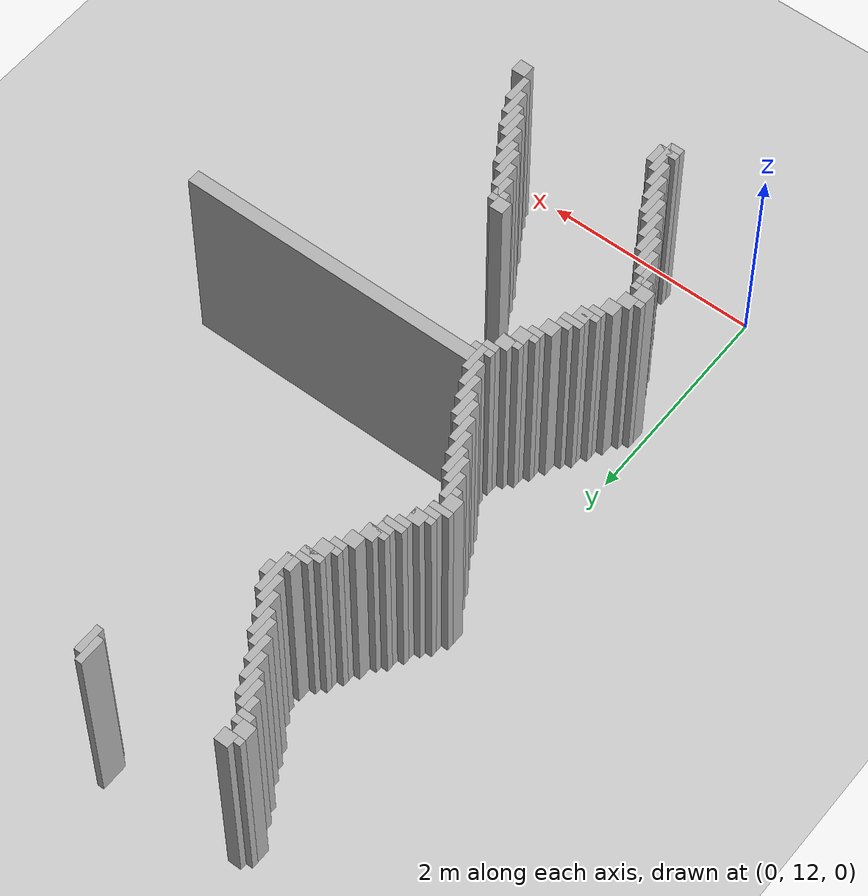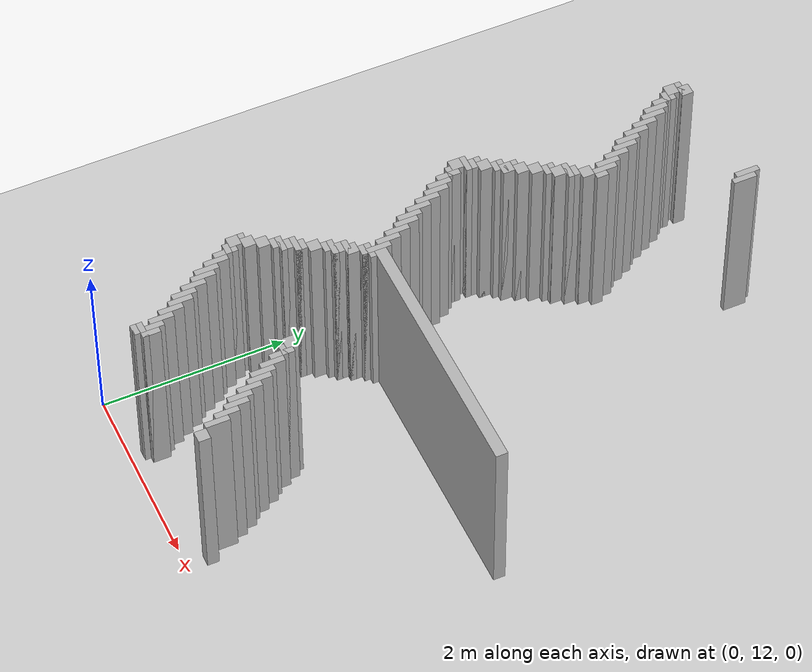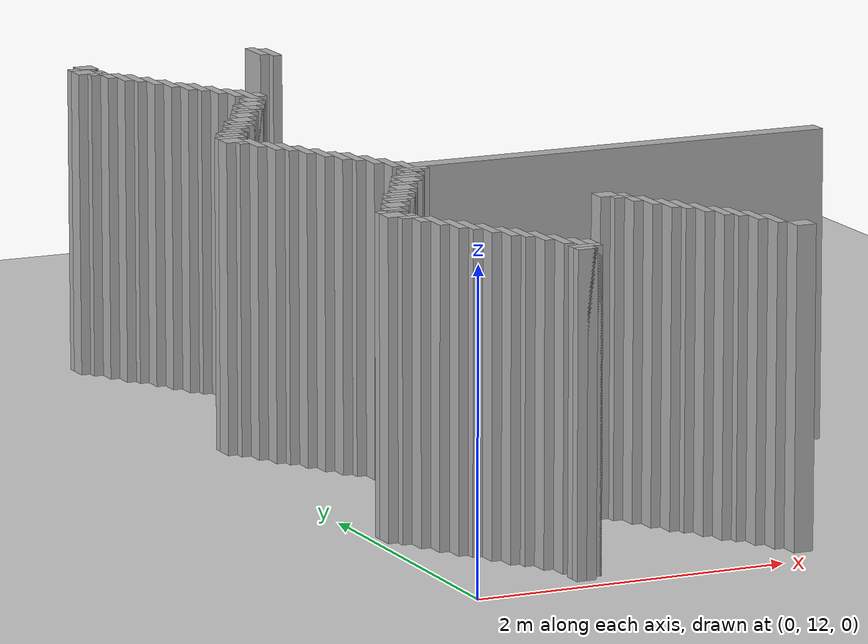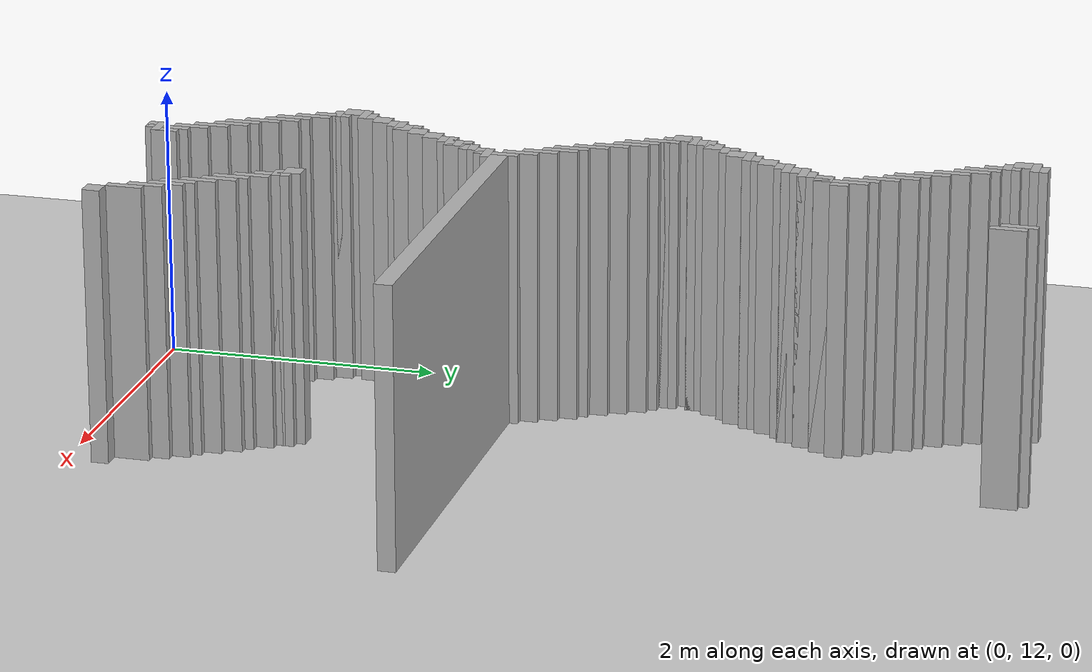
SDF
<sdf version="1.6">
 <world name="slam_world">
  <model name="ground_plane">
   <static>true</static>
   <link name="link">
    <collision name="collision">
     <geometry><plane><normal>0 0 1</normal><size>100 100</size></plane></geometry>
    </collision>
    <visual name="visual">
     <geometry><plane><normal>0 0 1</normal><size>100 100</size></plane></geometry>
     <material>
      <ambient>0.8 0.8 0.8 1</ambient>
      <diffuse>0.8 0.8 0.8 1</diffuse>
      <specular>0.8 0.8 0.8 1</specular>
     </material>
    </visual>
   </link>
  </model>
  <model name="wall_551">
   <static>true</static>
   <pose>1.4361702127659572 18.51063829787234 1.0 0 0 0</pose>
   <link name="link">
    <collision name="collision">
     <geometry><box><size>0.06382978723404255 0.2553191489361702 2.0</size></box></geometry>
    </collision>
    <visual name="visual">
     <geometry><box><size>0.06382978723404255 0.2553191489361702 2.0</size></box></geometry>
     <material><ambient>0.5 0.5 0.5 1</ambient><diffuse>0.7 0.7 0.7 1</diffuse></material>
    </visual>
   </link>
  </model>
  <model name="wall_561">
   <static>true</static>
   <pose>1.4999999999999998 18.446808510638295 1.0 0 0 0</pose>
   <link name="link">
    <collision name="collision">
     <geometry><box><size>0.06382978723404255 0.2553191489361702 2.0</size></box></geometry>
    </collision>
    <visual name="visual">
     <geometry><box><size>0.06382978723404255 0.2553191489361702 2.0</size></box></geometry>
     <material><ambient>0.5 0.5 0.5 1</ambient><diffuse>0.7 0.7 0.7 1</diffuse></material>
    </visual>
   </link>
  </model>
  <model name="wall_568">
   <static>true</static>
   <pose>0.19148936170212766 18.446808510638295 1.0 0 0 0</pose>
   <link name="link">
    <collision name="collision">
     <geometry><box><size>0.1276595744680851 0.1276595744680851 2.0</size></box></geometry>
    </collision>
    <visual name="visual">
     <geometry><box><size>0.1276595744680851 0.1276595744680851 2.0</size></box></geometry>
     <material><ambient>0.5 0.5 0.5 1</ambient><diffuse>0.7 0.7 0.7 1</diffuse></material>
    </visual>
   </link>
  </model>
  <model name="wall_574">
   <static>true</static>
   <pose>0.15957446808510636 18.414893617021274 1.0 0 0 0</pose>
   <link name="link">
    <collision name="collision">
     <geometry><box><size>0.19148936170212766 0.06382978723404255 2.0</size></box></geometry>
    </collision>
    <visual name="visual">
     <geometry><box><size>0.19148936170212766 0.06382978723404255 2.0</size></box></geometry>
     <material><ambient>0.5 0.5 0.5 1</ambient><diffuse>0.7 0.7 0.7 1</diffuse></material>
    </visual>
   </link>
  </model>
  <model name="wall_581">
   <static>true</static>
   <pose>0.1276595744680851 18.319148936170212 1.0 0 0 0</pose>
   <link name="link">
    <collision name="collision">
     <geometry><box><size>0.1276595744680851 0.1276595744680851 2.0</size></box></geometry>
    </collision>
    <visual name="visual">
     <geometry><box><size>0.1276595744680851 0.1276595744680851 2.0</size></box></geometry>
     <material><ambient>0.5 0.5 0.5 1</ambient><diffuse>0.7 0.7 0.7 1</diffuse></material>
    </visual>
   </link>
  </model>
  <model name="wall_586">
   <static>true</static>
   <pose>0.22340425531914893 18.191489361702125 1.0 0 0 0</pose>
   <link name="link">
    <collision name="collision">
     <geometry><box><size>0.06382978723404255 0.2553191489361702 2.0</size></box></geometry>
    </collision>
    <visual name="visual">
     <geometry><box><size>0.06382978723404255 0.2553191489361702 2.0</size></box></geometry>
     <material><ambient>0.5 0.5 0.5 1</ambient><diffuse>0.7 0.7 0.7 1</diffuse></material>
    </visual>
   </link>
  </model>
  <model name="wall_594">
   <static>true</static>
   <pose>0.19148936170212766 18.223404255319146 1.0 0 0 0</pose>
   <link name="link">
    <collision name="collision">
     <geometry><box><size>0.1276595744680851 0.06382978723404255 2.0</size></box></geometry>
    </collision>
    <visual name="visual">
     <geometry><box><size>0.1276595744680851 0.06382978723404255 2.0</size></box></geometry>
     <material><ambient>0.5 0.5 0.5 1</ambient><diffuse>0.7 0.7 0.7 1</diffuse></material>
    </visual>
   </link>
  </model>
  <model name="wall_600">
   <static>true</static>
   <pose>0.28723404255319146 18.06382978723404 1.0 0 0 0</pose>
   <link name="link">
    <collision name="collision">
     <geometry><box><size>0.06382978723404255 0.2553191489361702 2.0</size></box></geometry>
    </collision>
    <visual name="visual">
     <geometry><box><size>0.06382978723404255 0.2553191489361702 2.0</size></box></geometry>
     <material><ambient>0.5 0.5 0.5 1</ambient><diffuse>0.7 0.7 0.7 1</diffuse></material>
    </visual>
   </link>
  </model>
  <model name="wall_609">
   <static>true</static>
   <pose>0.351063829787234 18.0 1.0 0 0 0</pose>
   <link name="link">
    <collision name="collision">
     <geometry><box><size>0.06382978723404255 0.2553191489361702 2.0</size></box></geometry>
    </collision>
    <visual name="visual">
     <geometry><box><size>0.06382978723404255 0.2553191489361702 2.0</size></box></geometry>
     <material><ambient>0.5 0.5 0.5 1</ambient><diffuse>0.7 0.7 0.7 1</diffuse></material>
    </visual>
   </link>
  </model>
  <model name="wall_624">
   <static>true</static>
   <pose>0.4148936170212766 17.872340425531913 1.0 0 0 0</pose>
   <link name="link">
    <collision name="collision">
     <geometry><box><size>0.06382978723404255 0.2553191489361702 2.0</size></box></geometry>
    </collision>
    <visual name="visual">
     <geometry><box><size>0.06382978723404255 0.2553191489361702 2.0</size></box></geometry>
     <material><ambient>0.5 0.5 0.5 1</ambient><diffuse>0.7 0.7 0.7 1</diffuse></material>
    </visual>
   </link>
  </model>
  <model name="wall_637">
   <static>true</static>
   <pose>0.4787234042553191 17.74468085106383 1.0 0 0 0</pose>
   <link name="link">
    <collision name="collision">
     <geometry><box><size>0.06382978723404255 0.2553191489361702 2.0</size></box></geometry>
    </collision>
    <visual name="visual">
     <geometry><box><size>0.06382978723404255 0.2553191489361702 2.0</size></box></geometry>
     <material><ambient>0.5 0.5 0.5 1</ambient><diffuse>0.7 0.7 0.7 1</diffuse></material>
    </visual>
   </link>
  </model>
  <model name="wall_646">
   <static>true</static>
   <pose>0.5425531914893617 17.617021276595743 1.0 0 0 0</pose>
   <link name="link">
    <collision name="collision">
     <geometry><box><size>0.06382978723404255 0.2553191489361702 2.0</size></box></geometry>
    </collision>
    <visual name="visual">
     <geometry><box><size>0.06382978723404255 0.2553191489361702 2.0</size></box></geometry>
     <material><ambient>0.5 0.5 0.5 1</ambient><diffuse>0.7 0.7 0.7 1</diffuse></material>
    </visual>
   </link>
  </model>
  <model name="wall_655">
   <static>true</static>
   <pose>0.6063829787234042 17.5531914893617 1.0 0 0 0</pose>
   <link name="link">
    <collision name="collision">
     <geometry><box><size>0.06382978723404255 0.2553191489361702 2.0</size></box></geometry>
    </collision>
    <visual name="visual">
     <geometry><box><size>0.06382978723404255 0.2553191489361702 2.0</size></box></geometry>
     <material><ambient>0.5 0.5 0.5 1</ambient><diffuse>0.7 0.7 0.7 1</diffuse></material>
    </visual>
   </link>
  </model>
  <model name="wall_668">
   <static>true</static>
   <pose>0.6702127659574467 17.425531914893615 1.0 0 0 0</pose>
   <link name="link">
    <collision name="collision">
     <geometry><box><size>0.06382978723404255 0.2553191489361702 2.0</size></box></geometry>
    </collision>
    <visual name="visual">
     <geometry><box><size>0.06382978723404255 0.2553191489361702 2.0</size></box></geometry>
     <material><ambient>0.5 0.5 0.5 1</ambient><diffuse>0.7 0.7 0.7 1</diffuse></material>
    </visual>
   </link>
  </model>
  <model name="wall_681">
   <static>true</static>
   <pose>0.7340425531914893 17.29787234042553 1.0 0 0 0</pose>
   <link name="link">
    <collision name="collision">
     <geometry><box><size>0.06382978723404255 0.2553191489361702 2.0</size></box></geometry>
    </collision>
    <visual name="visual">
     <geometry><box><size>0.06382978723404255 0.2553191489361702 2.0</size></box></geometry>
     <material><ambient>0.5 0.5 0.5 1</ambient><diffuse>0.7 0.7 0.7 1</diffuse></material>
    </visual>
   </link>
  </model>
  <model name="wall_690">
   <static>true</static>
   <pose>0.7978723404255319 17.170212765957444 1.0 0 0 0</pose>
   <link name="link">
    <collision name="collision">
     <geometry><box><size>0.06382978723404255 0.3829787234042553 2.0</size></box></geometry>
    </collision>
    <visual name="visual">
     <geometry><box><size>0.06382978723404255 0.3829787234042553 2.0</size></box></geometry>
     <material><ambient>0.5 0.5 0.5 1</ambient><diffuse>0.7 0.7 0.7 1</diffuse></material>
    </visual>
   </link>
  </model>
  <model name="wall_701">
   <static>true</static>
   <pose>0.8617021276595744 17.170212765957444 1.0 0 0 0</pose>
   <link name="link">
    <collision name="collision">
     <geometry><box><size>0.06382978723404255 0.1276595744680851 2.0</size></box></geometry>
    </collision>
    <visual name="visual">
     <geometry><box><size>0.06382978723404255 0.1276595744680851 2.0</size></box></geometry>
     <material><ambient>0.5 0.5 0.5 1</ambient><diffuse>0.7 0.7 0.7 1</diffuse></material>
    </visual>
   </link>
  </model>
  <model name="wall_713">
   <static>true</static>
   <pose>0.7659574468085106 17.04255319148936 1.0 0 0 0</pose>
   <link name="link">
    <collision name="collision">
     <geometry><box><size>0.1276595744680851 0.1276595744680851 2.0</size></box></geometry>
    </collision>
    <visual name="visual">
     <geometry><box><size>0.1276595744680851 0.1276595744680851 2.0</size></box></geometry>
     <material><ambient>0.5 0.5 0.5 1</ambient><diffuse>0.7 0.7 0.7 1</diffuse></material>
    </visual>
   </link>
  </model>
  <model name="wall_724">
   <static>true</static>
   <pose>0.702127659574468 16.914893617021274 1.0 0 0 0</pose>
   <link name="link">
    <collision name="collision">
     <geometry><box><size>0.1276595744680851 0.1276595744680851 2.0</size></box></geometry>
    </collision>
    <visual name="visual">
     <geometry><box><size>0.1276595744680851 0.1276595744680851 2.0</size></box></geometry>
     <material><ambient>0.5 0.5 0.5 1</ambient><diffuse>0.7 0.7 0.7 1</diffuse></material>
    </visual>
   </link>
  </model>
  <model name="wall_734">
   <static>true</static>
   <pose>0.6702127659574467 16.882978723404253 1.0 0 0 0</pose>
   <link name="link">
    <collision name="collision">
     <geometry><box><size>0.19148936170212766 0.06382978723404255 2.0</size></box></geometry>
    </collision>
    <visual name="visual">
     <geometry><box><size>0.19148936170212766 0.06382978723404255 2.0</size></box></geometry>
     <material><ambient>0.5 0.5 0.5 1</ambient><diffuse>0.7 0.7 0.7 1</diffuse></material>
    </visual>
   </link>
  </model>
  <model name="wall_744">
   <static>true</static>
   <pose>0.6382978723404255 16.78723404255319 1.0 0 0 0</pose>
   <link name="link">
    <collision name="collision">
     <geometry><box><size>0.1276595744680851 0.1276595744680851 2.0</size></box></geometry>
    </collision>
    <visual name="visual">
     <geometry><box><size>0.1276595744680851 0.1276595744680851 2.0</size></box></geometry>
     <material><ambient>0.5 0.5 0.5 1</ambient><diffuse>0.7 0.7 0.7 1</diffuse></material>
    </visual>
   </link>
  </model>
  <model name="wall_754">
   <static>true</static>
   <pose>0.6063829787234042 16.75531914893617 1.0 0 0 0</pose>
   <link name="link">
    <collision name="collision">
     <geometry><box><size>0.19148936170212766 0.06382978723404255 2.0</size></box></geometry>
    </collision>
    <visual name="visual">
     <geometry><box><size>0.19148936170212766 0.06382978723404255 2.0</size></box></geometry>
     <material><ambient>0.5 0.5 0.5 1</ambient><diffuse>0.7 0.7 0.7 1</diffuse></material>
    </visual>
   </link>
  </model>
  <model name="wall_764">
   <static>true</static>
   <pose>0.5744680851063829 16.691489361702125 1.0 0 0 0</pose>
   <link name="link">
    <collision name="collision">
     <geometry><box><size>0.1276595744680851 0.06382978723404255 2.0</size></box></geometry>
    </collision>
    <visual name="visual">
     <geometry><box><size>0.1276595744680851 0.06382978723404255 2.0</size></box></geometry>
     <material><ambient>0.5 0.5 0.5 1</ambient><diffuse>0.7 0.7 0.7 1</diffuse></material>
    </visual>
   </link>
  </model>
  <model name="wall_771">
   <static>true</static>
   <pose>0.5106382978723404 16.595744680851062 1.0 0 0 0</pose>
   <link name="link">
    <collision name="collision">
     <geometry><box><size>0.1276595744680851 0.1276595744680851 2.0</size></box></geometry>
    </collision>
    <visual name="visual">
     <geometry><box><size>0.1276595744680851 0.1276595744680851 2.0</size></box></geometry>
     <material><ambient>0.5 0.5 0.5 1</ambient><diffuse>0.7 0.7 0.7 1</diffuse></material>
    </visual>
   </link>
  </model>
  <model name="wall_781">
   <static>true</static>
   <pose>0.44680851063829785 16.46808510638298 1.0 0 0 0</pose>
   <link name="link">
    <collision name="collision">
     <geometry><box><size>0.1276595744680851 0.1276595744680851 2.0</size></box></geometry>
    </collision>
    <visual name="visual">
     <geometry><box><size>0.1276595744680851 0.1276595744680851 2.0</size></box></geometry>
     <material><ambient>0.5 0.5 0.5 1</ambient><diffuse>0.7 0.7 0.7 1</diffuse></material>
    </visual>
   </link>
  </model>
  <model name="wall_791">
   <static>true</static>
   <pose>0.4148936170212766 16.436170212765955 1.0 0 0 0</pose>
   <link name="link">
    <collision name="collision">
     <geometry><box><size>0.19148936170212766 0.06382978723404255 2.0</size></box></geometry>
    </collision>
    <visual name="visual">
     <geometry><box><size>0.19148936170212766 0.06382978723404255 2.0</size></box></geometry>
     <material><ambient>0.5 0.5 0.5 1</ambient><diffuse>0.7 0.7 0.7 1</diffuse></material>
    </visual>
   </link>
  </model>
  <model name="wall_801">
   <static>true</static>
   <pose>0.3829787234042553 16.340425531914892 1.0 0 0 0</pose>
   <link name="link">
    <collision name="collision">
     <geometry><box><size>0.1276595744680851 0.1276595744680851 2.0</size></box></geometry>
    </collision>
    <visual name="visual">
     <geometry><box><size>0.1276595744680851 0.1276595744680851 2.0</size></box></geometry>
     <material><ambient>0.5 0.5 0.5 1</ambient><diffuse>0.7 0.7 0.7 1</diffuse></material>
    </visual>
   </link>
  </model>
  <model name="wall_808">
   <static>true</static>
   <pose>0.351063829787234 16.30851063829787 1.0 0 0 0</pose>
   <link name="link">
    <collision name="collision">
     <geometry><box><size>0.19148936170212766 0.06382978723404255 2.0</size></box></geometry>
    </collision>
    <visual name="visual">
     <geometry><box><size>0.19148936170212766 0.06382978723404255 2.0</size></box></geometry>
     <material><ambient>0.5 0.5 0.5 1</ambient><diffuse>0.7 0.7 0.7 1</diffuse></material>
    </visual>
   </link>
  </model>
  <model name="wall_818">
   <static>true</static>
   <pose>0.3191489361702127 16.24468085106383 1.0 0 0 0</pose>
   <link name="link">
    <collision name="collision">
     <geometry><box><size>0.1276595744680851 0.06382978723404255 2.0</size></box></geometry>
    </collision>
    <visual name="visual">
     <geometry><box><size>0.1276595744680851 0.06382978723404255 2.0</size></box></geometry>
     <material><ambient>0.5 0.5 0.5 1</ambient><diffuse>0.7 0.7 0.7 1</diffuse></material>
    </visual>
   </link>
  </model>
  <model name="wall_825">
   <static>true</static>
   <pose>0.2553191489361702 16.148936170212764 1.0 0 0 0</pose>
   <link name="link">
    <collision name="collision">
     <geometry><box><size>0.1276595744680851 0.1276595744680851 2.0</size></box></geometry>
    </collision>
    <visual name="visual">
     <geometry><box><size>0.1276595744680851 0.1276595744680851 2.0</size></box></geometry>
     <material><ambient>0.5 0.5 0.5 1</ambient><diffuse>0.7 0.7 0.7 1</diffuse></material>
    </visual>
   </link>
  </model>
  <model name="wall_835">
   <static>true</static>
   <pose>0.22340425531914893 16.117021276595743 1.0 0 0 0</pose>
   <link name="link">
    <collision name="collision">
     <geometry><box><size>0.19148936170212766 0.06382978723404255 2.0</size></box></geometry>
    </collision>
    <visual name="visual">
     <geometry><box><size>0.19148936170212766 0.06382978723404255 2.0</size></box></geometry>
     <material><ambient>0.5 0.5 0.5 1</ambient><diffuse>0.7 0.7 0.7 1</diffuse></material>
    </visual>
   </link>
  </model>
  <model name="wall_843">
   <static>true</static>
   <pose>0.19148936170212766 16.02127659574468 1.0 0 0 0</pose>
   <link name="link">
    <collision name="collision">
     <geometry><box><size>0.1276595744680851 0.1276595744680851 2.0</size></box></geometry>
    </collision>
    <visual name="visual">
     <geometry><box><size>0.1276595744680851 0.1276595744680851 2.0</size></box></geometry>
     <material><ambient>0.5 0.5 0.5 1</ambient><diffuse>0.7 0.7 0.7 1</diffuse></material>
    </visual>
   </link>
  </model>
  <model name="wall_850">
   <static>true</static>
   <pose>0.15957446808510636 15.989361702127658 1.0 0 0 0</pose>
   <link name="link">
    <collision name="collision">
     <geometry><box><size>0.19148936170212766 0.06382978723404255 2.0</size></box></geometry>
    </collision>
    <visual name="visual">
     <geometry><box><size>0.19148936170212766 0.06382978723404255 2.0</size></box></geometry>
     <material><ambient>0.5 0.5 0.5 1</ambient><diffuse>0.7 0.7 0.7 1</diffuse></material>
    </visual>
   </link>
  </model>
  <model name="wall_857">
   <static>true</static>
   <pose>0.1276595744680851 15.893617021276594 1.0 0 0 0</pose>
   <link name="link">
    <collision name="collision">
     <geometry><box><size>0.1276595744680851 0.1276595744680851 2.0</size></box></geometry>
    </collision>
    <visual name="visual">
     <geometry><box><size>0.1276595744680851 0.1276595744680851 2.0</size></box></geometry>
     <material><ambient>0.5 0.5 0.5 1</ambient><diffuse>0.7 0.7 0.7 1</diffuse></material>
    </visual>
   </link>
  </model>
  <model name="wall_864">
   <static>true</static>
   <pose>0.22340425531914893 15.765957446808509 1.0 0 0 0</pose>
   <link name="link">
    <collision name="collision">
     <geometry><box><size>0.06382978723404255 0.2553191489361702 2.0</size></box></geometry>
    </collision>
    <visual name="visual">
     <geometry><box><size>0.06382978723404255 0.2553191489361702 2.0</size></box></geometry>
     <material><ambient>0.5 0.5 0.5 1</ambient><diffuse>0.7 0.7 0.7 1</diffuse></material>
    </visual>
   </link>
  </model>
  <model name="wall_870">
   <static>true</static>
   <pose>0.19148936170212766 15.797872340425531 1.0 0 0 0</pose>
   <link name="link">
    <collision name="collision">
     <geometry><box><size>0.1276595744680851 0.06382978723404255 2.0</size></box></geometry>
    </collision>
    <visual name="visual">
     <geometry><box><size>0.1276595744680851 0.06382978723404255 2.0</size></box></geometry>
     <material><ambient>0.5 0.5 0.5 1</ambient><diffuse>0.7 0.7 0.7 1</diffuse></material>
    </visual>
   </link>
  </model>
  <model name="wall_873">
   <static>true</static>
   <pose>0.28723404255319146 15.638297872340424 1.0 0 0 0</pose>
   <link name="link">
    <collision name="collision">
     <geometry><box><size>0.06382978723404255 0.2553191489361702 2.0</size></box></geometry>
    </collision>
    <visual name="visual">
     <geometry><box><size>0.06382978723404255 0.2553191489361702 2.0</size></box></geometry>
     <material><ambient>0.5 0.5 0.5 1</ambient><diffuse>0.7 0.7 0.7 1</diffuse></material>
    </visual>
   </link>
  </model>
  <model name="wall_876">
   <static>true</static>
   <pose>0.351063829787234 15.574468085106382 1.0 0 0 0</pose>
   <link name="link">
    <collision name="collision">
     <geometry><box><size>0.06382978723404255 0.2553191489361702 2.0</size></box></geometry>
    </collision>
    <visual name="visual">
     <geometry><box><size>0.06382978723404255 0.2553191489361702 2.0</size></box></geometry>
     <material><ambient>0.5 0.5 0.5 1</ambient><diffuse>0.7 0.7 0.7 1</diffuse></material>
    </visual>
   </link>
  </model>
  <model name="wall_880">
   <static>true</static>
   <pose>0.4148936170212766 15.446808510638297 1.0 0 0 0</pose>
   <link name="link">
    <collision name="collision">
     <geometry><box><size>0.06382978723404255 0.2553191489361702 2.0</size></box></geometry>
    </collision>
    <visual name="visual">
     <geometry><box><size>0.06382978723404255 0.2553191489361702 2.0</size></box></geometry>
     <material><ambient>0.5 0.5 0.5 1</ambient><diffuse>0.7 0.7 0.7 1</diffuse></material>
    </visual>
   </link>
  </model>
  <model name="wall_883">
   <static>true</static>
   <pose>0.4787234042553191 15.319148936170212 1.0 0 0 0</pose>
   <link name="link">
    <collision name="collision">
     <geometry><box><size>0.06382978723404255 0.2553191489361702 2.0</size></box></geometry>
    </collision>
    <visual name="visual">
     <geometry><box><size>0.06382978723404255 0.2553191489361702 2.0</size></box></geometry>
     <material><ambient>0.5 0.5 0.5 1</ambient><diffuse>0.7 0.7 0.7 1</diffuse></material>
    </visual>
   </link>
  </model>
  <model name="wall_886">
   <static>true</static>
   <pose>0.5425531914893617 15.191489361702127 1.0 0 0 0</pose>
   <link name="link">
    <collision name="collision">
     <geometry><box><size>0.06382978723404255 0.2553191489361702 2.0</size></box></geometry>
    </collision>
    <visual name="visual">
     <geometry><box><size>0.06382978723404255 0.2553191489361702 2.0</size></box></geometry>
     <material><ambient>0.5 0.5 0.5 1</ambient><diffuse>0.7 0.7 0.7 1</diffuse></material>
    </visual>
   </link>
  </model>
  <model name="wall_889">
   <static>true</static>
   <pose>0.6063829787234042 15.127659574468083 1.0 0 0 0</pose>
   <link name="link">
    <collision name="collision">
     <geometry><box><size>0.06382978723404255 0.2553191489361702 2.0</size></box></geometry>
    </collision>
    <visual name="visual">
     <geometry><box><size>0.06382978723404255 0.2553191489361702 2.0</size></box></geometry>
     <material><ambient>0.5 0.5 0.5 1</ambient><diffuse>0.7 0.7 0.7 1</diffuse></material>
    </visual>
   </link>
  </model>
  <model name="wall_892">
   <static>true</static>
   <pose>0.6702127659574467 14.999999999999998 1.0 0 0 0</pose>
   <link name="link">
    <collision name="collision">
     <geometry><box><size>0.06382978723404255 0.2553191489361702 2.0</size></box></geometry>
    </collision>
    <visual name="visual">
     <geometry><box><size>0.06382978723404255 0.2553191489361702 2.0</size></box></geometry>
     <material><ambient>0.5 0.5 0.5 1</ambient><diffuse>0.7 0.7 0.7 1</diffuse></material>
    </visual>
   </link>
  </model>
  <model name="wall_895">
   <static>true</static>
   <pose>0.7340425531914893 14.872340425531913 1.0 0 0 0</pose>
   <link name="link">
    <collision name="collision">
     <geometry><box><size>0.06382978723404255 0.2553191489361702 2.0</size></box></geometry>
    </collision>
    <visual name="visual">
     <geometry><box><size>0.06382978723404255 0.2553191489361702 2.0</size></box></geometry>
     <material><ambient>0.5 0.5 0.5 1</ambient><diffuse>0.7 0.7 0.7 1</diffuse></material>
    </visual>
   </link>
  </model>
  <model name="wall_898">
   <static>true</static>
   <pose>0.7978723404255319 14.712765957446807 1.0 0 0 0</pose>
   <link name="link">
    <collision name="collision">
     <geometry><box><size>0.06382978723404255 0.3191489361702127 2.0</size></box></geometry>
    </collision>
    <visual name="visual">
     <geometry><box><size>0.06382978723404255 0.3191489361702127 2.0</size></box></geometry>
     <material><ambient>0.5 0.5 0.5 1</ambient><diffuse>0.7 0.7 0.7 1</diffuse></material>
    </visual>
   </link>
  </model>
  <model name="wall_901">
   <static>true</static>
   <pose>2.234042553191489 14.744680851063828 1.0 0 0 0</pose>
   <link name="link">
    <collision name="collision">
     <geometry><box><size>2.808510638297872 0.1276595744680851 2.0</size></box></geometry>
    </collision>
    <visual name="visual">
     <geometry><box><size>2.808510638297872 0.1276595744680851 2.0</size></box></geometry>
     <material><ambient>0.5 0.5 0.5 1</ambient><diffuse>0.7 0.7 0.7 1</diffuse></material>
    </visual>
   </link>
  </model>
  <model name="wall_908">
   <static>true</static>
   <pose>0.7978723404255319 14.648936170212766 1.0 0 0 0</pose>
   <link name="link">
    <collision name="collision">
     <geometry><box><size>0.19148936170212766 0.06382978723404255 2.0</size></box></geometry>
    </collision>
    <visual name="visual">
     <geometry><box><size>0.19148936170212766 0.06382978723404255 2.0</size></box></geometry>
     <material><ambient>0.5 0.5 0.5 1</ambient><diffuse>0.7 0.7 0.7 1</diffuse></material>
    </visual>
   </link>
  </model>
  <model name="wall_916">
   <static>true</static>
   <pose>0.7659574468085106 14.585106382978722 1.0 0 0 0</pose>
   <link name="link">
    <collision name="collision">
     <geometry><box><size>0.1276595744680851 0.06382978723404255 2.0</size></box></geometry>
    </collision>
    <visual name="visual">
     <geometry><box><size>0.1276595744680851 0.06382978723404255 2.0</size></box></geometry>
     <material><ambient>0.5 0.5 0.5 1</ambient><diffuse>0.7 0.7 0.7 1</diffuse></material>
    </visual>
   </link>
  </model>
  <model name="wall_923">
   <static>true</static>
   <pose>0.702127659574468 14.489361702127658 1.0 0 0 0</pose>
   <link name="link">
    <collision name="collision">
     <geometry><box><size>0.1276595744680851 0.1276595744680851 2.0</size></box></geometry>
    </collision>
    <visual name="visual">
     <geometry><box><size>0.1276595744680851 0.1276595744680851 2.0</size></box></geometry>
     <material><ambient>0.5 0.5 0.5 1</ambient><diffuse>0.7 0.7 0.7 1</diffuse></material>
    </visual>
   </link>
  </model>
  <model name="wall_930">
   <static>true</static>
   <pose>0.6702127659574467 14.457446808510637 1.0 0 0 0</pose>
   <link name="link">
    <collision name="collision">
     <geometry><box><size>0.19148936170212766 0.06382978723404255 2.0</size></box></geometry>
    </collision>
    <visual name="visual">
     <geometry><box><size>0.19148936170212766 0.06382978723404255 2.0</size></box></geometry>
     <material><ambient>0.5 0.5 0.5 1</ambient><diffuse>0.7 0.7 0.7 1</diffuse></material>
    </visual>
   </link>
  </model>
  <model name="wall_937">
   <static>true</static>
   <pose>0.6382978723404255 14.361702127659573 1.0 0 0 0</pose>
   <link name="link">
    <collision name="collision">
     <geometry><box><size>0.1276595744680851 0.1276595744680851 2.0</size></box></geometry>
    </collision>
    <visual name="visual">
     <geometry><box><size>0.1276595744680851 0.1276595744680851 2.0</size></box></geometry>
     <material><ambient>0.5 0.5 0.5 1</ambient><diffuse>0.7 0.7 0.7 1</diffuse></material>
    </visual>
   </link>
  </model>
  <model name="wall_944">
   <static>true</static>
   <pose>0.6063829787234042 14.329787234042552 1.0 0 0 0</pose>
   <link name="link">
    <collision name="collision">
     <geometry><box><size>0.19148936170212766 0.06382978723404255 2.0</size></box></geometry>
    </collision>
    <visual name="visual">
     <geometry><box><size>0.19148936170212766 0.06382978723404255 2.0</size></box></geometry>
     <material><ambient>0.5 0.5 0.5 1</ambient><diffuse>0.7 0.7 0.7 1</diffuse></material>
    </visual>
   </link>
  </model>
  <model name="wall_951">
   <static>true</static>
   <pose>0.5744680851063829 14.265957446808509 1.0 0 0 0</pose>
   <link name="link">
    <collision name="collision">
     <geometry><box><size>0.1276595744680851 0.06382978723404255 2.0</size></box></geometry>
    </collision>
    <visual name="visual">
     <geometry><box><size>0.1276595744680851 0.06382978723404255 2.0</size></box></geometry>
     <material><ambient>0.5 0.5 0.5 1</ambient><diffuse>0.7 0.7 0.7 1</diffuse></material>
    </visual>
   </link>
  </model>
  <model name="wall_955">
   <static>true</static>
   <pose>0.5106382978723404 14.170212765957446 1.0 0 0 0</pose>
   <link name="link">
    <collision name="collision">
     <geometry><box><size>0.1276595744680851 0.1276595744680851 2.0</size></box></geometry>
    </collision>
    <visual name="visual">
     <geometry><box><size>0.1276595744680851 0.1276595744680851 2.0</size></box></geometry>
     <material><ambient>0.5 0.5 0.5 1</ambient><diffuse>0.7 0.7 0.7 1</diffuse></material>
    </visual>
   </link>
  </model>
  <model name="wall_962">
   <static>true</static>
   <pose>0.44680851063829785 14.042553191489361 1.0 0 0 0</pose>
   <link name="link">
    <collision name="collision">
     <geometry><box><size>0.1276595744680851 0.1276595744680851 2.0</size></box></geometry>
    </collision>
    <visual name="visual">
     <geometry><box><size>0.1276595744680851 0.1276595744680851 2.0</size></box></geometry>
     <material><ambient>0.5 0.5 0.5 1</ambient><diffuse>0.7 0.7 0.7 1</diffuse></material>
    </visual>
   </link>
  </model>
  <model name="wall_969">
   <static>true</static>
   <pose>0.4148936170212766 14.010638297872338 1.0 0 0 0</pose>
   <link name="link">
    <collision name="collision">
     <geometry><box><size>0.19148936170212766 0.06382978723404255 2.0</size></box></geometry>
    </collision>
    <visual name="visual">
     <geometry><box><size>0.19148936170212766 0.06382978723404255 2.0</size></box></geometry>
     <material><ambient>0.5 0.5 0.5 1</ambient><diffuse>0.7 0.7 0.7 1</diffuse></material>
    </visual>
   </link>
  </model>
  <model name="wall_976">
   <static>true</static>
   <pose>0.3829787234042553 13.914893617021276 1.0 0 0 0</pose>
   <link name="link">
    <collision name="collision">
     <geometry><box><size>0.1276595744680851 0.1276595744680851 2.0</size></box></geometry>
    </collision>
    <visual name="visual">
     <geometry><box><size>0.1276595744680851 0.1276595744680851 2.0</size></box></geometry>
     <material><ambient>0.5 0.5 0.5 1</ambient><diffuse>0.7 0.7 0.7 1</diffuse></material>
    </visual>
   </link>
  </model>
  <model name="wall_980">
   <static>true</static>
   <pose>0.351063829787234 13.882978723404253 1.0 0 0 0</pose>
   <link name="link">
    <collision name="collision">
     <geometry><box><size>0.19148936170212766 0.06382978723404255 2.0</size></box></geometry>
    </collision>
    <visual name="visual">
     <geometry><box><size>0.19148936170212766 0.06382978723404255 2.0</size></box></geometry>
     <material><ambient>0.5 0.5 0.5 1</ambient><diffuse>0.7 0.7 0.7 1</diffuse></material>
    </visual>
   </link>
  </model>
  <model name="wall_987">
   <static>true</static>
   <pose>0.3191489361702127 13.819148936170212 1.0 0 0 0</pose>
   <link name="link">
    <collision name="collision">
     <geometry><box><size>0.1276595744680851 0.06382978723404255 2.0</size></box></geometry>
    </collision>
    <visual name="visual">
     <geometry><box><size>0.1276595744680851 0.06382978723404255 2.0</size></box></geometry>
     <material><ambient>0.5 0.5 0.5 1</ambient><diffuse>0.7 0.7 0.7 1</diffuse></material>
    </visual>
   </link>
  </model>
  <model name="wall_991">
   <static>true</static>
   <pose>0.2553191489361702 13.723404255319148 1.0 0 0 0</pose>
   <link name="link">
    <collision name="collision">
     <geometry><box><size>0.1276595744680851 0.1276595744680851 2.0</size></box></geometry>
    </collision>
    <visual name="visual">
     <geometry><box><size>0.1276595744680851 0.1276595744680851 2.0</size></box></geometry>
     <material><ambient>0.5 0.5 0.5 1</ambient><diffuse>0.7 0.7 0.7 1</diffuse></material>
    </visual>
   </link>
  </model>
  <model name="wall_998">
   <static>true</static>
   <pose>0.19148936170212766 13.595744680851062 1.0 0 0 0</pose>
   <link name="link">
    <collision name="collision">
     <geometry><box><size>0.1276595744680851 0.1276595744680851 2.0</size></box></geometry>
    </collision>
    <visual name="visual">
     <geometry><box><size>0.1276595744680851 0.1276595744680851 2.0</size></box></geometry>
     <material><ambient>0.5 0.5 0.5 1</ambient><diffuse>0.7 0.7 0.7 1</diffuse></material>
    </visual>
   </link>
  </model>
  <model name="wall_1004">
   <static>true</static>
   <pose>0.15957446808510636 13.563829787234042 1.0 0 0 0</pose>
   <link name="link">
    <collision name="collision">
     <geometry><box><size>0.19148936170212766 0.06382978723404255 2.0</size></box></geometry>
    </collision>
    <visual name="visual">
     <geometry><box><size>0.19148936170212766 0.06382978723404255 2.0</size></box></geometry>
     <material><ambient>0.5 0.5 0.5 1</ambient><diffuse>0.7 0.7 0.7 1</diffuse></material>
    </visual>
   </link>
  </model>
  <model name="wall_1010">
   <static>true</static>
   <pose>0.1276595744680851 13.468085106382977 1.0 0 0 0</pose>
   <link name="link">
    <collision name="collision">
     <geometry><box><size>0.1276595744680851 0.1276595744680851 2.0</size></box></geometry>
    </collision>
    <visual name="visual">
     <geometry><box><size>0.1276595744680851 0.1276595744680851 2.0</size></box></geometry>
     <material><ambient>0.5 0.5 0.5 1</ambient><diffuse>0.7 0.7 0.7 1</diffuse></material>
    </visual>
   </link>
  </model>
  <model name="wall_1011">
   <static>true</static>
   <pose>1.5319148936170213 13.468085106382977 1.0 0 0 0</pose>
   <link name="link">
    <collision name="collision">
     <geometry><box><size>0.1276595744680851 0.1276595744680851 2.0</size></box></geometry>
    </collision>
    <visual name="visual">
     <geometry><box><size>0.1276595744680851 0.1276595744680851 2.0</size></box></geometry>
     <material><ambient>0.5 0.5 0.5 1</ambient><diffuse>0.7 0.7 0.7 1</diffuse></material>
    </visual>
   </link>
  </model>
  <model name="wall_1017">
   <static>true</static>
   <pose>0.22340425531914893 13.340425531914892 1.0 0 0 0</pose>
   <link name="link">
    <collision name="collision">
     <geometry><box><size>0.06382978723404255 0.2553191489361702 2.0</size></box></geometry>
    </collision>
    <visual name="visual">
     <geometry><box><size>0.06382978723404255 0.2553191489361702 2.0</size></box></geometry>
     <material><ambient>0.5 0.5 0.5 1</ambient><diffuse>0.7 0.7 0.7 1</diffuse></material>
    </visual>
   </link>
  </model>
  <model name="wall_1018">
   <static>true</static>
   <pose>1.627659574468085 13.340425531914892 1.0 0 0 0</pose>
   <link name="link">
    <collision name="collision">
     <geometry><box><size>0.06382978723404255 0.2553191489361702 2.0</size></box></geometry>
    </collision>
    <visual name="visual">
     <geometry><box><size>0.06382978723404255 0.2553191489361702 2.0</size></box></geometry>
     <material><ambient>0.5 0.5 0.5 1</ambient><diffuse>0.7 0.7 0.7 1</diffuse></material>
    </visual>
   </link>
  </model>
  <model name="wall_1026">
   <static>true</static>
   <pose>0.19148936170212766 13.372340425531913 1.0 0 0 0</pose>
   <link name="link">
    <collision name="collision">
     <geometry><box><size>0.1276595744680851 0.06382978723404255 2.0</size></box></geometry>
    </collision>
    <visual name="visual">
     <geometry><box><size>0.1276595744680851 0.06382978723404255 2.0</size></box></geometry>
     <material><ambient>0.5 0.5 0.5 1</ambient><diffuse>0.7 0.7 0.7 1</diffuse></material>
    </visual>
   </link>
  </model>
  <model name="wall_1027">
   <static>true</static>
   <pose>1.5957446808510638 13.372340425531913 1.0 0 0 0</pose>
   <link name="link">
    <collision name="collision">
     <geometry><box><size>0.1276595744680851 0.06382978723404255 2.0</size></box></geometry>
    </collision>
    <visual name="visual">
     <geometry><box><size>0.1276595744680851 0.06382978723404255 2.0</size></box></geometry>
     <material><ambient>0.5 0.5 0.5 1</ambient><diffuse>0.7 0.7 0.7 1</diffuse></material>
    </visual>
   </link>
  </model>
  <model name="wall_1033">
   <static>true</static>
   <pose>0.28723404255319146 13.212765957446807 1.0 0 0 0</pose>
   <link name="link">
    <collision name="collision">
     <geometry><box><size>0.06382978723404255 0.2553191489361702 2.0</size></box></geometry>
    </collision>
    <visual name="visual">
     <geometry><box><size>0.06382978723404255 0.2553191489361702 2.0</size></box></geometry>
     <material><ambient>0.5 0.5 0.5 1</ambient><diffuse>0.7 0.7 0.7 1</diffuse></material>
    </visual>
   </link>
  </model>
  <model name="wall_1034">
   <static>true</static>
   <pose>1.6914893617021276 13.212765957446807 1.0 0 0 0</pose>
   <link name="link">
    <collision name="collision">
     <geometry><box><size>0.06382978723404255 0.2553191489361702 2.0</size></box></geometry>
    </collision>
    <visual name="visual">
     <geometry><box><size>0.06382978723404255 0.2553191489361702 2.0</size></box></geometry>
     <material><ambient>0.5 0.5 0.5 1</ambient><diffuse>0.7 0.7 0.7 1</diffuse></material>
    </visual>
   </link>
  </model>
  <model name="wall_1043">
   <static>true</static>
   <pose>0.351063829787234 13.085106382978722 1.0 0 0 0</pose>
   <link name="link">
    <collision name="collision">
     <geometry><box><size>0.06382978723404255 0.2553191489361702 2.0</size></box></geometry>
    </collision>
    <visual name="visual">
     <geometry><box><size>0.06382978723404255 0.2553191489361702 2.0</size></box></geometry>
     <material><ambient>0.5 0.5 0.5 1</ambient><diffuse>0.7 0.7 0.7 1</diffuse></material>
    </visual>
   </link>
  </model>
  <model name="wall_1044">
   <static>true</static>
   <pose>1.7553191489361701 13.085106382978722 1.0 0 0 0</pose>
   <link name="link">
    <collision name="collision">
     <geometry><box><size>0.06382978723404255 0.2553191489361702 2.0</size></box></geometry>
    </collision>
    <visual name="visual">
     <geometry><box><size>0.06382978723404255 0.2553191489361702 2.0</size></box></geometry>
     <material><ambient>0.5 0.5 0.5 1</ambient><diffuse>0.7 0.7 0.7 1</diffuse></material>
    </visual>
   </link>
  </model>
  <model name="wall_1053">
   <static>true</static>
   <pose>0.4148936170212766 13.02127659574468 1.0 0 0 0</pose>
   <link name="link">
    <collision name="collision">
     <geometry><box><size>0.06382978723404255 0.2553191489361702 2.0</size></box></geometry>
    </collision>
    <visual name="visual">
     <geometry><box><size>0.06382978723404255 0.2553191489361702 2.0</size></box></geometry>
     <material><ambient>0.5 0.5 0.5 1</ambient><diffuse>0.7 0.7 0.7 1</diffuse></material>
    </visual>
   </link>
  </model>
  <model name="wall_1054">
   <static>true</static>
   <pose>1.8191489361702127 13.02127659574468 1.0 0 0 0</pose>
   <link name="link">
    <collision name="collision">
     <geometry><box><size>0.06382978723404255 0.2553191489361702 2.0</size></box></geometry>
    </collision>
    <visual name="visual">
     <geometry><box><size>0.06382978723404255 0.2553191489361702 2.0</size></box></geometry>
     <material><ambient>0.5 0.5 0.5 1</ambient><diffuse>0.7 0.7 0.7 1</diffuse></material>
    </visual>
   </link>
  </model>
  <model name="wall_1067">
   <static>true</static>
   <pose>0.4787234042553191 12.893617021276595 1.0 0 0 0</pose>
   <link name="link">
    <collision name="collision">
     <geometry><box><size>0.06382978723404255 0.2553191489361702 2.0</size></box></geometry>
    </collision>
    <visual name="visual">
     <geometry><box><size>0.06382978723404255 0.2553191489361702 2.0</size></box></geometry>
     <material><ambient>0.5 0.5 0.5 1</ambient><diffuse>0.7 0.7 0.7 1</diffuse></material>
    </visual>
   </link>
  </model>
  <model name="wall_1068">
   <static>true</static>
   <pose>1.8829787234042552 12.893617021276595 1.0 0 0 0</pose>
   <link name="link">
    <collision name="collision">
     <geometry><box><size>0.06382978723404255 0.2553191489361702 2.0</size></box></geometry>
    </collision>
    <visual name="visual">
     <geometry><box><size>0.06382978723404255 0.2553191489361702 2.0</size></box></geometry>
     <material><ambient>0.5 0.5 0.5 1</ambient><diffuse>0.7 0.7 0.7 1</diffuse></material>
    </visual>
   </link>
  </model>
  <model name="wall_1079">
   <static>true</static>
   <pose>0.5425531914893617 12.76595744680851 1.0 0 0 0</pose>
   <link name="link">
    <collision name="collision">
     <geometry><box><size>0.06382978723404255 0.2553191489361702 2.0</size></box></geometry>
    </collision>
    <visual name="visual">
     <geometry><box><size>0.06382978723404255 0.2553191489361702 2.0</size></box></geometry>
     <material><ambient>0.5 0.5 0.5 1</ambient><diffuse>0.7 0.7 0.7 1</diffuse></material>
    </visual>
   </link>
  </model>
  <model name="wall_1080">
   <static>true</static>
   <pose>1.9468085106382977 12.76595744680851 1.0 0 0 0</pose>
   <link name="link">
    <collision name="collision">
     <geometry><box><size>0.06382978723404255 0.2553191489361702 2.0</size></box></geometry>
    </collision>
    <visual name="visual">
     <geometry><box><size>0.06382978723404255 0.2553191489361702 2.0</size></box></geometry>
     <material><ambient>0.5 0.5 0.5 1</ambient><diffuse>0.7 0.7 0.7 1</diffuse></material>
    </visual>
   </link>
  </model>
  <model name="wall_1089">
   <static>true</static>
   <pose>0.6063829787234042 12.702127659574467 1.0 0 0 0</pose>
   <link name="link">
    <collision name="collision">
     <geometry><box><size>0.06382978723404255 0.2553191489361702 2.0</size></box></geometry>
    </collision>
    <visual name="visual">
     <geometry><box><size>0.06382978723404255 0.2553191489361702 2.0</size></box></geometry>
     <material><ambient>0.5 0.5 0.5 1</ambient><diffuse>0.7 0.7 0.7 1</diffuse></material>
    </visual>
   </link>
  </model>
  <model name="wall_1090">
   <static>true</static>
   <pose>2.0106382978723403 12.702127659574467 1.0 0 0 0</pose>
   <link name="link">
    <collision name="collision">
     <geometry><box><size>0.06382978723404255 0.2553191489361702 2.0</size></box></geometry>
    </collision>
    <visual name="visual">
     <geometry><box><size>0.06382978723404255 0.2553191489361702 2.0</size></box></geometry>
     <material><ambient>0.5 0.5 0.5 1</ambient><diffuse>0.7 0.7 0.7 1</diffuse></material>
    </visual>
   </link>
  </model>
  <model name="wall_1101">
   <static>true</static>
   <pose>0.6702127659574467 12.574468085106382 1.0 0 0 0</pose>
   <link name="link">
    <collision name="collision">
     <geometry><box><size>0.06382978723404255 0.2553191489361702 2.0</size></box></geometry>
    </collision>
    <visual name="visual">
     <geometry><box><size>0.06382978723404255 0.2553191489361702 2.0</size></box></geometry>
     <material><ambient>0.5 0.5 0.5 1</ambient><diffuse>0.7 0.7 0.7 1</diffuse></material>
    </visual>
   </link>
  </model>
  <model name="wall_1102">
   <static>true</static>
   <pose>2.074468085106383 12.574468085106382 1.0 0 0 0</pose>
   <link name="link">
    <collision name="collision">
     <geometry><box><size>0.06382978723404255 0.2553191489361702 2.0</size></box></geometry>
    </collision>
    <visual name="visual">
     <geometry><box><size>0.06382978723404255 0.2553191489361702 2.0</size></box></geometry>
     <material><ambient>0.5 0.5 0.5 1</ambient><diffuse>0.7 0.7 0.7 1</diffuse></material>
    </visual>
   </link>
  </model>
  <model name="wall_1113">
   <static>true</static>
   <pose>0.7340425531914893 12.446808510638297 1.0 0 0 0</pose>
   <link name="link">
    <collision name="collision">
     <geometry><box><size>0.06382978723404255 0.2553191489361702 2.0</size></box></geometry>
    </collision>
    <visual name="visual">
     <geometry><box><size>0.06382978723404255 0.2553191489361702 2.0</size></box></geometry>
     <material><ambient>0.5 0.5 0.5 1</ambient><diffuse>0.7 0.7 0.7 1</diffuse></material>
    </visual>
   </link>
  </model>
  <model name="wall_1114">
   <static>true</static>
   <pose>2.1382978723404253 12.446808510638297 1.0 0 0 0</pose>
   <link name="link">
    <collision name="collision">
     <geometry><box><size>0.06382978723404255 0.2553191489361702 2.0</size></box></geometry>
    </collision>
    <visual name="visual">
     <geometry><box><size>0.06382978723404255 0.2553191489361702 2.0</size></box></geometry>
     <material><ambient>0.5 0.5 0.5 1</ambient><diffuse>0.7 0.7 0.7 1</diffuse></material>
    </visual>
   </link>
  </model>
  <model name="wall_1123">
   <static>true</static>
   <pose>0.7978723404255319 12.287234042553191 1.0 0 0 0</pose>
   <link name="link">
    <collision name="collision">
     <geometry><box><size>0.06382978723404255 0.3191489361702127 2.0</size></box></geometry>
    </collision>
    <visual name="visual">
     <geometry><box><size>0.06382978723404255 0.3191489361702127 2.0</size></box></geometry>
     <material><ambient>0.5 0.5 0.5 1</ambient><diffuse>0.7 0.7 0.7 1</diffuse></material>
    </visual>
   </link>
  </model>
  <model name="wall_1132">
   <static>true</static>
   <pose>0.8617021276595744 12.287234042553191 1.0 0 0 0</pose>
   <link name="link">
    <collision name="collision">
     <geometry><box><size>0.06382978723404255 0.19148936170212766 2.0</size></box></geometry>
    </collision>
    <visual name="visual">
     <geometry><box><size>0.06382978723404255 0.19148936170212766 2.0</size></box></geometry>
     <material><ambient>0.5 0.5 0.5 1</ambient><diffuse>0.7 0.7 0.7 1</diffuse></material>
    </visual>
   </link>
  </model>
  <model name="wall_1140">
   <static>true</static>
   <pose>2.234042553191489 12.25531914893617 1.0 0 0 0</pose>
   <link name="link">
    <collision name="collision">
     <geometry><box><size>0.1276595744680851 0.1276595744680851 2.0</size></box></geometry>
    </collision>
    <visual name="visual">
     <geometry><box><size>0.1276595744680851 0.1276595744680851 2.0</size></box></geometry>
     <material><ambient>0.5 0.5 0.5 1</ambient><diffuse>0.7 0.7 0.7 1</diffuse></material>
    </visual>
   </link>
  </model>
  <model name="wall_1144">
   <static>true</static>
   <pose>0.7978723404255319 12.223404255319148 1.0 0 0 0</pose>
   <link name="link">
    <collision name="collision">
     <geometry><box><size>0.19148936170212766 0.06382978723404255 2.0</size></box></geometry>
    </collision>
    <visual name="visual">
     <geometry><box><size>0.19148936170212766 0.06382978723404255 2.0</size></box></geometry>
     <material><ambient>0.5 0.5 0.5 1</ambient><diffuse>0.7 0.7 0.7 1</diffuse></material>
    </visual>
   </link>
  </model>
  <model name="wall_1153">
   <static>true</static>
   <pose>0.7659574468085106 12.159574468085106 1.0 0 0 0</pose>
   <link name="link">
    <collision name="collision">
     <geometry><box><size>0.1276595744680851 0.06382978723404255 2.0</size></box></geometry>
    </collision>
    <visual name="visual">
     <geometry><box><size>0.1276595744680851 0.06382978723404255 2.0</size></box></geometry>
     <material><ambient>0.5 0.5 0.5 1</ambient><diffuse>0.7 0.7 0.7 1</diffuse></material>
    </visual>
   </link>
  </model>
 </world>
</sdf>
